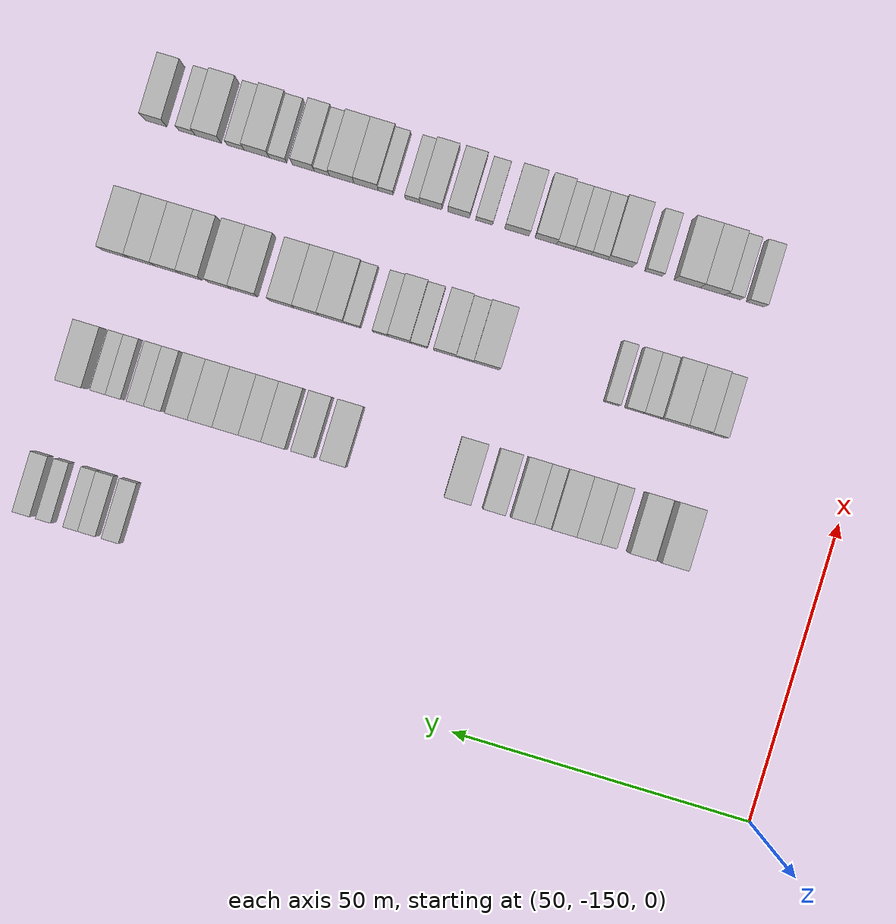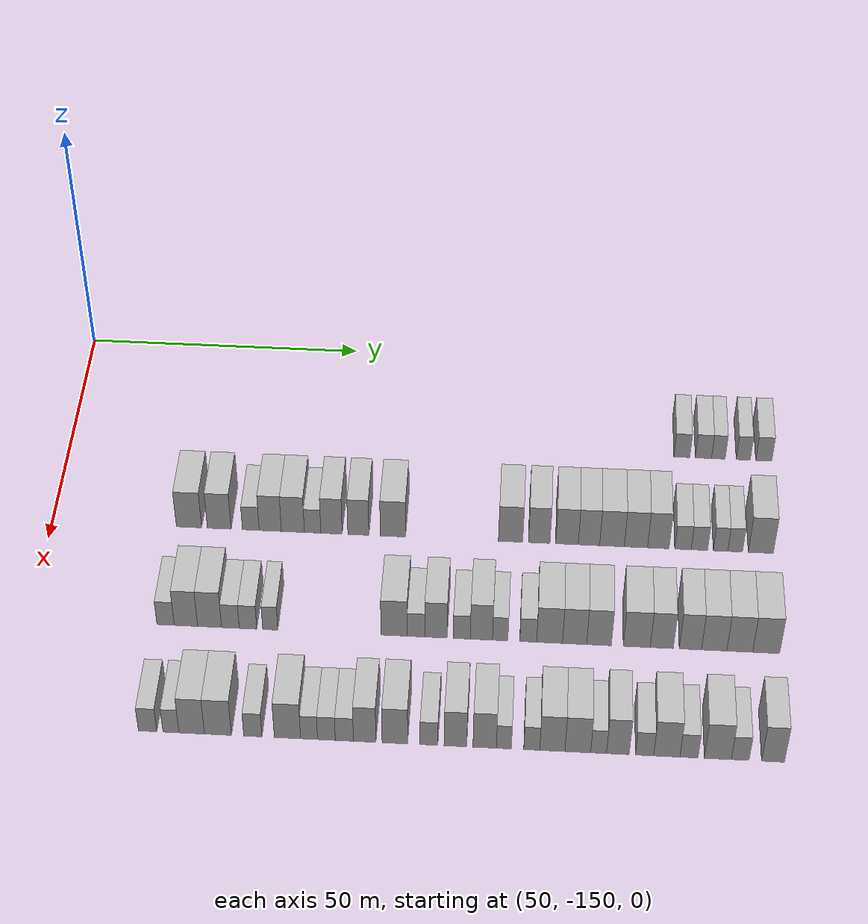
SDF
<sdf version="1.6">
 <world name="default">
  <model name="building_465">
   <static>1</static>
   <pose>69.0000 -39.1263 0 0.000000 0.000000 0.000000</pose>
   <link name="link">
    <pose>0 0 3.00 0 0 0</pose>
    <collision name="collision"><geometry><box><size>10.0000 2.8559 6.0000</size></box></geometry></collision>
    <visual name="visual">
     <cast_shadows>0</cast_shadows>
     <geometry><box><size>10.0000 2.8559 6.0000</size></box></geometry>
     <material>
      <script>
       <uri>model://HANNAS_wall/materials/scripts</uri>
       <uri>model://HANNAS_wall/materials/textures</uri>
       <name>vrc/HANNAS_wall</name>
      </script>
     </material>
    </visual>
   </link>
  </model>
  <model name="building_466">
   <static>1</static>
   <pose>69.0000 -35.2380 0 0.000000 0.000000 0.000000</pose>
   <link name="link">
    <pose>0 0 3.00 0 0 0</pose>
    <collision name="collision"><geometry><box><size>10.0000 2.9206 6.0000</size></box></geometry></collision>
    <visual name="visual">
     <cast_shadows>0</cast_shadows>
     <geometry><box><size>10.0000 2.9206 6.0000</size></box></geometry>
     <material>
      <script>
       <uri>model://HANNAS_wall/materials/scripts</uri>
       <uri>model://HANNAS_wall/materials/textures</uri>
       <name>vrc/HANNAS_wall</name>
      </script>
     </material>
    </visual>
   </link>
  </model>
  <model name="building_467">
   <static>1</static>
   <pose>69.0000 -32.5563 0 0.000000 0.000000 0.000000</pose>
   <link name="link">
    <pose>0 0 3.00 0 0 0</pose>
    <collision name="collision"><geometry><box><size>10.0000 2.4430 6.0000</size></box></geometry></collision>
    <visual name="visual">
     <cast_shadows>0</cast_shadows>
     <geometry><box><size>10.0000 2.4430 6.0000</size></box></geometry>
     <material>
      <script>
       <uri>model://HANNAS_wall/materials/scripts</uri>
       <uri>model://HANNAS_wall/materials/textures</uri>
       <name>vrc/HANNAS_wall</name>
      </script>
     </material>
    </visual>
   </link>
  </model>
  <model name="building_468">
   <static>1</static>
   <pose>69.0000 -28.0826 0 0.000000 0.000000 0.000000</pose>
   <link name="link">
    <pose>0 0 3.00 0 0 0</pose>
    <collision name="collision"><geometry><box><size>10.0000 2.5043 6.0000</size></box></geometry></collision>
    <visual name="visual">
     <cast_shadows>0</cast_shadows>
     <geometry><box><size>10.0000 2.5043 6.0000</size></box></geometry>
     <material>
      <script>
       <uri>model://HANNAS_wall/materials/scripts</uri>
       <uri>model://HANNAS_wall/materials/textures</uri>
       <name>vrc/HANNAS_wall</name>
      </script>
     </material>
    </visual>
   </link>
  </model>
  <model name="building_469">
   <static>1</static>
   <pose>69.0000 -24.3845 0 0.000000 0.000000 0.000000</pose>
   <link name="link">
    <pose>0 0 3.00 0 0 0</pose>
    <collision name="collision"><geometry><box><size>10.0000 2.8919 6.0000</size></box></geometry></collision>
    <visual name="visual">
     <cast_shadows>0</cast_shadows>
     <geometry><box><size>10.0000 2.8919 6.0000</size></box></geometry>
     <material>
      <script>
       <uri>model://HANNAS_wall/materials/scripts</uri>
       <uri>model://HANNAS_wall/materials/textures</uri>
       <name>vrc/HANNAS_wall</name>
      </script>
     </material>
    </visual>
   </link>
  </model>
  <model name="building_635">
   <static>1</static>
   <pose>91.0000 -125.8442 0 0.000000 0.000000 0.000000</pose>
   <link name="link">
    <pose>0 0 4.50 0 0 0</pose>
    <collision name="collision"><geometry><box><size>10.0000 4.4582 9.0000</size></box></geometry></collision>
    <visual name="visual">
     <cast_shadows>0</cast_shadows>
     <geometry><box><size>10.0000 4.4582 9.0000</size></box></geometry>
     <material>
      <script>
       <uri>model://HANNAS_wall/materials/scripts</uri>
       <uri>model://HANNAS_wall/materials/textures</uri>
       <name>vrc/HANNAS_wall</name>
      </script>
     </material>
    </visual>
   </link>
  </model>
  <model name="building_636">
   <static>1</static>
   <pose>91.0000 -120.5212 0 0.000000 0.000000 0.000000</pose>
   <link name="link">
    <pose>0 0 4.50 0 0 0</pose>
    <collision name="collision"><geometry><box><size>10.0000 4.1878 9.0000</size></box></geometry></collision>
    <visual name="visual">
     <cast_shadows>0</cast_shadows>
     <geometry><box><size>10.0000 4.1878 9.0000</size></box></geometry>
     <material>
      <script>
       <uri>model://HANNAS_wall/materials/scripts</uri>
       <uri>model://HANNAS_wall/materials/textures</uri>
       <name>vrc/HANNAS_wall</name>
      </script>
     </material>
    </visual>
   </link>
  </model>
  <model name="building_637">
   <static>1</static>
   <pose>91.0000 -114.9559 0 0.000000 0.000000 0.000000</pose>
   <link name="link">
    <pose>0 0 3.00 0 0 0</pose>
    <collision name="collision"><geometry><box><size>10.0000 2.9429 6.0000</size></box></geometry></collision>
    <visual name="visual">
     <cast_shadows>0</cast_shadows>
     <geometry><box><size>10.0000 2.9429 6.0000</size></box></geometry>
     <material>
      <script>
       <uri>model://HANNAS_wall/materials/scripts</uri>
       <uri>model://HANNAS_wall/materials/textures</uri>
       <name>vrc/HANNAS_wall</name>
      </script>
     </material>
    </visual>
   </link>
  </model>
  <model name="building_638">
   <static>1</static>
   <pose>91.0000 -111.5303 0 0.000000 0.000000 0.000000</pose>
   <link name="link">
    <pose>0 0 4.50 0 0 0</pose>
    <collision name="collision"><geometry><box><size>10.0000 3.9081 9.0000</size></box></geometry></collision>
    <visual name="visual">
     <cast_shadows>0</cast_shadows>
     <geometry><box><size>10.0000 3.9081 9.0000</size></box></geometry>
     <material>
      <script>
       <uri>model://HANNAS_wall/materials/scripts</uri>
       <uri>model://HANNAS_wall/materials/textures</uri>
       <name>vrc/HANNAS_wall</name>
      </script>
     </material>
    </visual>
   </link>
  </model>
  <model name="building_639">
   <static>1</static>
   <pose>91.0000 -107.5520 0 0.000000 0.000000 0.000000</pose>
   <link name="link">
    <pose>0 0 4.50 0 0 0</pose>
    <collision name="collision"><geometry><box><size>10.0000 4.0485 9.0000</size></box></geometry></collision>
    <visual name="visual">
     <cast_shadows>0</cast_shadows>
     <geometry><box><size>10.0000 4.0485 9.0000</size></box></geometry>
     <material>
      <script>
       <uri>model://HANNAS_wall/materials/scripts</uri>
       <uri>model://HANNAS_wall/materials/textures</uri>
       <name>vrc/HANNAS_wall</name>
      </script>
     </material>
    </visual>
   </link>
  </model>
  <model name="building_640">
   <static>1</static>
   <pose>91.0000 -104.0850 0 0.000000 0.000000 0.000000</pose>
   <link name="link">
    <pose>0 0 3.00 0 0 0</pose>
    <collision name="collision"><geometry><box><size>10.0000 2.8856 6.0000</size></box></geometry></collision>
    <visual name="visual">
     <cast_shadows>0</cast_shadows>
     <geometry><box><size>10.0000 2.8856 6.0000</size></box></geometry>
     <material>
      <script>
       <uri>model://HANNAS_wall/materials/scripts</uri>
       <uri>model://HANNAS_wall/materials/textures</uri>
       <name>vrc/HANNAS_wall</name>
      </script>
     </material>
    </visual>
   </link>
  </model>
  <model name="building_641">
   <static>1</static>
   <pose>91.0000 -100.7714 0 0.000000 0.000000 0.000000</pose>
   <link name="link">
    <pose>0 0 4.50 0 0 0</pose>
    <collision name="collision"><geometry><box><size>10.0000 3.7415 9.0000</size></box></geometry></collision>
    <visual name="visual">
     <cast_shadows>0</cast_shadows>
     <geometry><box><size>10.0000 3.7415 9.0000</size></box></geometry>
     <material>
      <script>
       <uri>model://HANNAS_wall/materials/scripts</uri>
       <uri>model://HANNAS_wall/materials/textures</uri>
       <name>vrc/HANNAS_wall</name>
      </script>
     </material>
    </visual>
   </link>
  </model>
  <model name="building_642">
   <static>1</static>
   <pose>91.0000 -96.0615 0 0.000000 0.000000 0.000000</pose>
   <link name="link">
    <pose>0 0 4.50 0 0 0</pose>
    <collision name="collision"><geometry><box><size>10.0000 3.6784 9.0000</size></box></geometry></collision>
    <visual name="visual">
     <cast_shadows>0</cast_shadows>
     <geometry><box><size>10.0000 3.6784 9.0000</size></box></geometry>
     <material>
      <script>
       <uri>model://HANNAS_wall/materials/scripts</uri>
       <uri>model://HANNAS_wall/materials/textures</uri>
       <name>vrc/HANNAS_wall</name>
      </script>
     </material>
    </visual>
   </link>
  </model>
  <model name="building_643">
   <static>1</static>
   <pose>91.0000 -90.0112 0 0.000000 0.000000 0.000000</pose>
   <link name="link">
    <pose>0 0 4.50 0 0 0</pose>
    <collision name="collision"><geometry><box><size>10.0000 4.4222 9.0000</size></box></geometry></collision>
    <visual name="visual">
     <cast_shadows>0</cast_shadows>
     <geometry><box><size>10.0000 4.4222 9.0000</size></box></geometry>
     <material>
      <script>
       <uri>model://HANNAS_wall/materials/scripts</uri>
       <uri>model://HANNAS_wall/materials/textures</uri>
       <name>vrc/HANNAS_wall</name>
      </script>
     </material>
    </visual>
   </link>
  </model>
  <model name="building_644">
   <static>1</static>
   <pose>91.0000 -69.4468 0 0.000000 0.000000 0.000000</pose>
   <link name="link">
    <pose>0 0 4.50 0 0 0</pose>
    <collision name="collision"><geometry><box><size>10.0000 4.2355 9.0000</size></box></geometry></collision>
    <visual name="visual">
     <cast_shadows>0</cast_shadows>
     <geometry><box><size>10.0000 4.2355 9.0000</size></box></geometry>
     <material>
      <script>
       <uri>model://HANNAS_wall/materials/scripts</uri>
       <uri>model://HANNAS_wall/materials/textures</uri>
       <name>vrc/HANNAS_wall</name>
      </script>
     </material>
    </visual>
   </link>
  </model>
  <model name="building_645">
   <static>1</static>
   <pose>91.0000 -64.4554 0 0.000000 0.000000 0.000000</pose>
   <link name="link">
    <pose>0 0 4.50 0 0 0</pose>
    <collision name="collision"><geometry><box><size>10.0000 3.7474 9.0000</size></box></geometry></collision>
    <visual name="visual">
     <cast_shadows>0</cast_shadows>
     <geometry><box><size>10.0000 3.7474 9.0000</size></box></geometry>
     <material>
      <script>
       <uri>model://HANNAS_wall/materials/scripts</uri>
       <uri>model://HANNAS_wall/materials/textures</uri>
       <name>vrc/HANNAS_wall</name>
      </script>
     </material>
    </visual>
   </link>
  </model>
  <model name="building_646">
   <static>1</static>
   <pose>91.0000 -59.6228 0 0.000000 0.000000 0.000000</pose>
   <link name="link">
    <pose>0 0 4.50 0 0 0</pose>
    <collision name="collision"><geometry><box><size>10.0000 3.9178 9.0000</size></box></geometry></collision>
    <visual name="visual">
     <cast_shadows>0</cast_shadows>
     <geometry><box><size>10.0000 3.9178 9.0000</size></box></geometry>
     <material>
      <script>
       <uri>model://HANNAS_wall/materials/scripts</uri>
       <uri>model://HANNAS_wall/materials/textures</uri>
       <name>vrc/HANNAS_wall</name>
      </script>
     </material>
    </visual>
   </link>
  </model>
  <model name="building_647">
   <static>1</static>
   <pose>91.0000 -55.8028 0 0.000000 0.000000 0.000000</pose>
   <link name="link">
    <pose>0 0 4.50 0 0 0</pose>
    <collision name="collision"><geometry><box><size>10.0000 3.7223 9.0000</size></box></geometry></collision>
    <visual name="visual">
     <cast_shadows>0</cast_shadows>
     <geometry><box><size>10.0000 3.7223 9.0000</size></box></geometry>
     <material>
      <script>
       <uri>model://HANNAS_wall/materials/scripts</uri>
       <uri>model://HANNAS_wall/materials/textures</uri>
       <name>vrc/HANNAS_wall</name>
      </script>
     </material>
    </visual>
   </link>
  </model>
  <model name="building_648">
   <static>1</static>
   <pose>91.0000 -51.7996 0 0.000000 0.000000 0.000000</pose>
   <link name="link">
    <pose>0 0 4.50 0 0 0</pose>
    <collision name="collision"><geometry><box><size>10.0000 4.2842 9.0000</size></box></geometry></collision>
    <visual name="visual">
     <cast_shadows>0</cast_shadows>
     <geometry><box><size>10.0000 4.2842 9.0000</size></box></geometry>
     <material>
      <script>
       <uri>model://HANNAS_wall/materials/scripts</uri>
       <uri>model://HANNAS_wall/materials/textures</uri>
       <name>vrc/HANNAS_wall</name>
      </script>
     </material>
    </visual>
   </link>
  </model>
  <model name="building_649">
   <static>1</static>
   <pose>91.0000 -47.6365 0 0.000000 0.000000 0.000000</pose>
   <link name="link">
    <pose>0 0 4.50 0 0 0</pose>
    <collision name="collision"><geometry><box><size>10.0000 4.0420 9.0000</size></box></geometry></collision>
    <visual name="visual">
     <cast_shadows>0</cast_shadows>
     <geometry><box><size>10.0000 4.0420 9.0000</size></box></geometry>
     <material>
      <script>
       <uri>model://HANNAS_wall/materials/scripts</uri>
       <uri>model://HANNAS_wall/materials/textures</uri>
       <name>vrc/HANNAS_wall</name>
      </script>
     </material>
    </visual>
   </link>
  </model>
  <model name="building_650">
   <static>1</static>
   <pose>91.0000 -43.7532 0 0.000000 0.000000 0.000000</pose>
   <link name="link">
    <pose>0 0 4.50 0 0 0</pose>
    <collision name="collision"><geometry><box><size>10.0000 3.7246 9.0000</size></box></geometry></collision>
    <visual name="visual">
     <cast_shadows>0</cast_shadows>
     <geometry><box><size>10.0000 3.7246 9.0000</size></box></geometry>
     <material>
      <script>
       <uri>model://HANNAS_wall/materials/scripts</uri>
       <uri>model://HANNAS_wall/materials/textures</uri>
       <name>vrc/HANNAS_wall</name>
      </script>
     </material>
    </visual>
   </link>
  </model>
  <model name="building_651">
   <static>1</static>
   <pose>91.0000 -39.4690 0 0.000000 0.000000 0.000000</pose>
   <link name="link">
    <pose>0 0 3.00 0 0 0</pose>
    <collision name="collision"><geometry><box><size>10.0000 2.8437 6.0000</size></box></geometry></collision>
    <visual name="visual">
     <cast_shadows>0</cast_shadows>
     <geometry><box><size>10.0000 2.8437 6.0000</size></box></geometry>
     <material>
      <script>
       <uri>model://HANNAS_wall/materials/scripts</uri>
       <uri>model://HANNAS_wall/materials/textures</uri>
       <name>vrc/HANNAS_wall</name>
      </script>
     </material>
    </visual>
   </link>
  </model>
  <model name="building_652">
   <static>1</static>
   <pose>91.0000 -36.6310 0 0.000000 0.000000 0.000000</pose>
   <link name="link">
    <pose>0 0 3.00 0 0 0</pose>
    <collision name="collision"><geometry><box><size>10.0000 2.8324 6.0000</size></box></geometry></collision>
    <visual name="visual">
     <cast_shadows>0</cast_shadows>
     <geometry><box><size>10.0000 2.8324 6.0000</size></box></geometry>
     <material>
      <script>
       <uri>model://HANNAS_wall/materials/scripts</uri>
       <uri>model://HANNAS_wall/materials/textures</uri>
       <name>vrc/HANNAS_wall</name>
      </script>
     </material>
    </visual>
   </link>
  </model>
  <model name="building_653">
   <static>1</static>
   <pose>91.0000 -32.9608 0 0.000000 0.000000 0.000000</pose>
   <link name="link">
    <pose>0 0 3.00 0 0 0</pose>
    <collision name="collision"><geometry><box><size>10.0000 2.5081 6.0000</size></box></geometry></collision>
    <visual name="visual">
     <cast_shadows>0</cast_shadows>
     <geometry><box><size>10.0000 2.5081 6.0000</size></box></geometry>
     <material>
      <script>
       <uri>model://HANNAS_wall/materials/scripts</uri>
       <uri>model://HANNAS_wall/materials/textures</uri>
       <name>vrc/HANNAS_wall</name>
      </script>
     </material>
    </visual>
   </link>
  </model>
  <model name="building_654">
   <static>1</static>
   <pose>91.0000 -30.4372 0 0.000000 0.000000 0.000000</pose>
   <link name="link">
    <pose>0 0 3.00 0 0 0</pose>
    <collision name="collision"><geometry><box><size>10.0000 2.5390 6.0000</size></box></geometry></collision>
    <visual name="visual">
     <cast_shadows>0</cast_shadows>
     <geometry><box><size>10.0000 2.5390 6.0000</size></box></geometry>
     <material>
      <script>
       <uri>model://HANNAS_wall/materials/scripts</uri>
       <uri>model://HANNAS_wall/materials/textures</uri>
       <name>vrc/HANNAS_wall</name>
      </script>
     </material>
    </visual>
   </link>
  </model>
  <model name="building_655">
   <static>1</static>
   <pose>91.0000 -26.0047 0 0.000000 0.000000 0.000000</pose>
   <link name="link">
    <pose>0 0 4.50 0 0 0</pose>
    <collision name="collision"><geometry><box><size>10.0000 4.3259 9.0000</size></box></geometry></collision>
    <visual name="visual">
     <cast_shadows>0</cast_shadows>
     <geometry><box><size>10.0000 4.3259 9.0000</size></box></geometry>
     <material>
      <script>
       <uri>model://HANNAS_wall/materials/scripts</uri>
       <uri>model://HANNAS_wall/materials/textures</uri>
       <name>vrc/HANNAS_wall</name>
      </script>
     </material>
    </visual>
   </link>
  </model>
  <model name="building_814">
   <static>1</static>
   <pose>113.0000 -126.9393 0 0.000000 0.000000 0.000000</pose>
   <link name="link">
    <pose>0 0 3.00 0 0 0</pose>
    <collision name="collision"><geometry><box><size>10.0000 2.9278 6.0000</size></box></geometry></collision>
    <visual name="visual">
     <cast_shadows>0</cast_shadows>
     <geometry><box><size>10.0000 2.9278 6.0000</size></box></geometry>
     <material>
      <script>
       <uri>model://HANNAS_wall/materials/scripts</uri>
       <uri>model://HANNAS_wall/materials/textures</uri>
       <name>vrc/HANNAS_wall</name>
      </script>
     </material>
    </visual>
   </link>
  </model>
  <model name="building_815">
   <static>1</static>
   <pose>113.0000 -123.4865 0 0.000000 0.000000 0.000000</pose>
   <link name="link">
    <pose>0 0 4.50 0 0 0</pose>
    <collision name="collision"><geometry><box><size>10.0000 3.9778 9.0000</size></box></geometry></collision>
    <visual name="visual">
     <cast_shadows>0</cast_shadows>
     <geometry><box><size>10.0000 3.9778 9.0000</size></box></geometry>
     <material>
      <script>
       <uri>model://HANNAS_wall/materials/scripts</uri>
       <uri>model://HANNAS_wall/materials/textures</uri>
       <name>vrc/HANNAS_wall</name>
      </script>
     </material>
    </visual>
   </link>
  </model>
  <model name="building_816">
   <static>1</static>
   <pose>113.0000 -119.4678 0 0.000000 0.000000 0.000000</pose>
   <link name="link">
    <pose>0 0 4.50 0 0 0</pose>
    <collision name="collision"><geometry><box><size>10.0000 4.0595 9.0000</size></box></geometry></collision>
    <visual name="visual">
     <cast_shadows>0</cast_shadows>
     <geometry><box><size>10.0000 4.0595 9.0000</size></box></geometry>
     <material>
      <script>
       <uri>model://HANNAS_wall/materials/scripts</uri>
       <uri>model://HANNAS_wall/materials/textures</uri>
       <name>vrc/HANNAS_wall</name>
      </script>
     </material>
    </visual>
   </link>
  </model>
  <model name="building_817">
   <static>1</static>
   <pose>113.0000 -115.9519 0 0.000000 0.000000 0.000000</pose>
   <link name="link">
    <pose>0 0 3.00 0 0 0</pose>
    <collision name="collision"><geometry><box><size>10.0000 2.9723 6.0000</size></box></geometry></collision>
    <visual name="visual">
     <cast_shadows>0</cast_shadows>
     <geometry><box><size>10.0000 2.9723 6.0000</size></box></geometry>
     <material>
      <script>
       <uri>model://HANNAS_wall/materials/scripts</uri>
       <uri>model://HANNAS_wall/materials/textures</uri>
       <name>vrc/HANNAS_wall</name>
      </script>
     </material>
    </visual>
   </link>
  </model>
  <model name="building_818">
   <static>1</static>
   <pose>113.0000 -112.9788 0 0.000000 0.000000 0.000000</pose>
   <link name="link">
    <pose>0 0 3.00 0 0 0</pose>
    <collision name="collision"><geometry><box><size>10.0000 2.9739 6.0000</size></box></geometry></collision>
    <visual name="visual">
     <cast_shadows>0</cast_shadows>
     <geometry><box><size>10.0000 2.9739 6.0000</size></box></geometry>
     <material>
      <script>
       <uri>model://HANNAS_wall/materials/scripts</uri>
       <uri>model://HANNAS_wall/materials/textures</uri>
       <name>vrc/HANNAS_wall</name>
      </script>
     </material>
    </visual>
   </link>
  </model>
  <model name="building_819">
   <static>1</static>
   <pose>113.0000 -109.2172 0 0.000000 0.000000 0.000000</pose>
   <link name="link">
    <pose>0 0 3.00 0 0 0</pose>
    <collision name="collision"><geometry><box><size>10.0000 2.5494 6.0000</size></box></geometry></collision>
    <visual name="visual">
     <cast_shadows>0</cast_shadows>
     <geometry><box><size>10.0000 2.5494 6.0000</size></box></geometry>
     <material>
      <script>
       <uri>model://HANNAS_wall/materials/scripts</uri>
       <uri>model://HANNAS_wall/materials/textures</uri>
       <name>vrc/HANNAS_wall</name>
      </script>
     </material>
    </visual>
   </link>
  </model>
  <model name="building_820">
   <static>1</static>
   <pose>113.0000 -88.3402 0 0.000000 0.000000 0.000000</pose>
   <link name="link">
    <pose>0 0 4.50 0 0 0</pose>
    <collision name="collision"><geometry><box><size>10.0000 4.4015 9.0000</size></box></geometry></collision>
    <visual name="visual">
     <cast_shadows>0</cast_shadows>
     <geometry><box><size>10.0000 4.4015 9.0000</size></box></geometry>
     <material>
      <script>
       <uri>model://HANNAS_wall/materials/scripts</uri>
       <uri>model://HANNAS_wall/materials/textures</uri>
       <name>vrc/HANNAS_wall</name>
      </script>
     </material>
    </visual>
   </link>
  </model>
  <model name="building_821">
   <static>1</static>
   <pose>113.0000 -84.6715 0 0.000000 0.000000 0.000000</pose>
   <link name="link">
    <pose>0 0 3.00 0 0 0</pose>
    <collision name="collision"><geometry><box><size>10.0000 2.9358 6.0000</size></box></geometry></collision>
    <visual name="visual">
     <cast_shadows>0</cast_shadows>
     <geometry><box><size>10.0000 2.9358 6.0000</size></box></geometry>
     <material>
      <script>
       <uri>model://HANNAS_wall/materials/scripts</uri>
       <uri>model://HANNAS_wall/materials/textures</uri>
       <name>vrc/HANNAS_wall</name>
      </script>
     </material>
    </visual>
   </link>
  </model>
  <model name="building_822">
   <static>1</static>
   <pose>113.0000 -81.3223 0 0.000000 0.000000 0.000000</pose>
   <link name="link">
    <pose>0 0 4.50 0 0 0</pose>
    <collision name="collision"><geometry><box><size>10.0000 3.7626 9.0000</size></box></geometry></collision>
    <visual name="visual">
     <cast_shadows>0</cast_shadows>
     <geometry><box><size>10.0000 3.7626 9.0000</size></box></geometry>
     <material>
      <script>
       <uri>model://HANNAS_wall/materials/scripts</uri>
       <uri>model://HANNAS_wall/materials/textures</uri>
       <name>vrc/HANNAS_wall</name>
      </script>
     </material>
    </visual>
   </link>
  </model>
  <model name="building_823">
   <static>1</static>
   <pose>113.0000 -77.0036 0 0.000000 0.000000 0.000000</pose>
   <link name="link">
    <pose>0 0 3.00 0 0 0</pose>
    <collision name="collision"><geometry><box><size>10.0000 2.8748 6.0000</size></box></geometry></collision>
    <visual name="visual">
     <cast_shadows>0</cast_shadows>
     <geometry><box><size>10.0000 2.8748 6.0000</size></box></geometry>
     <material>
      <script>
       <uri>model://HANNAS_wall/materials/scripts</uri>
       <uri>model://HANNAS_wall/materials/textures</uri>
       <name>vrc/HANNAS_wall</name>
      </script>
     </material>
    </visual>
   </link>
  </model>
  <model name="building_824">
   <static>1</static>
   <pose>113.0000 -73.6991 0 0.000000 0.000000 0.000000</pose>
   <link name="link">
    <pose>0 0 4.50 0 0 0</pose>
    <collision name="collision"><geometry><box><size>10.0000 3.7341 9.0000</size></box></geometry></collision>
    <visual name="visual">
     <cast_shadows>0</cast_shadows>
     <geometry><box><size>10.0000 3.7341 9.0000</size></box></geometry>
     <material>
      <script>
       <uri>model://HANNAS_wall/materials/scripts</uri>
       <uri>model://HANNAS_wall/materials/textures</uri>
       <name>vrc/HANNAS_wall</name>
      </script>
     </material>
    </visual>
   </link>
  </model>
  <model name="building_825">
   <static>1</static>
   <pose>113.0000 -70.5424 0 0.000000 0.000000 0.000000</pose>
   <link name="link">
    <pose>0 0 3.00 0 0 0</pose>
    <collision name="collision"><geometry><box><size>10.0000 2.5794 6.0000</size></box></geometry></collision>
    <visual name="visual">
     <cast_shadows>0</cast_shadows>
     <geometry><box><size>10.0000 2.5794 6.0000</size></box></geometry>
     <material>
      <script>
       <uri>model://HANNAS_wall/materials/scripts</uri>
       <uri>model://HANNAS_wall/materials/textures</uri>
       <name>vrc/HANNAS_wall</name>
      </script>
     </material>
    </visual>
   </link>
  </model>
  <model name="building_826">
   <static>1</static>
   <pose>113.0000 -65.8496 0 0.000000 0.000000 0.000000</pose>
   <link name="link">
    <pose>0 0 3.00 0 0 0</pose>
    <collision name="collision"><geometry><box><size>10.0000 2.8063 6.0000</size></box></geometry></collision>
    <visual name="visual">
     <cast_shadows>0</cast_shadows>
     <geometry><box><size>10.0000 2.8063 6.0000</size></box></geometry>
     <material>
      <script>
       <uri>model://HANNAS_wall/materials/scripts</uri>
       <uri>model://HANNAS_wall/materials/textures</uri>
       <name>vrc/HANNAS_wall</name>
      </script>
     </material>
    </visual>
   </link>
  </model>
  <model name="building_827">
   <static>1</static>
   <pose>113.0000 -62.2812 0 0.000000 0.000000 0.000000</pose>
   <link name="link">
    <pose>0 0 4.50 0 0 0</pose>
    <collision name="collision"><geometry><box><size>10.0000 4.3305 9.0000</size></box></geometry></collision>
    <visual name="visual">
     <cast_shadows>0</cast_shadows>
     <geometry><box><size>10.0000 4.3305 9.0000</size></box></geometry>
     <material>
      <script>
       <uri>model://HANNAS_wall/materials/scripts</uri>
       <uri>model://HANNAS_wall/materials/textures</uri>
       <name>vrc/HANNAS_wall</name>
      </script>
     </material>
    </visual>
   </link>
  </model>
  <model name="building_828">
   <static>1</static>
   <pose>113.0000 -58.1010 0 0.000000 0.000000 0.000000</pose>
   <link name="link">
    <pose>0 0 4.50 0 0 0</pose>
    <collision name="collision"><geometry><box><size>10.0000 4.0298 9.0000</size></box></geometry></collision>
    <visual name="visual">
     <cast_shadows>0</cast_shadows>
     <geometry><box><size>10.0000 4.0298 9.0000</size></box></geometry>
     <material>
      <script>
       <uri>model://HANNAS_wall/materials/scripts</uri>
       <uri>model://HANNAS_wall/materials/textures</uri>
       <name>vrc/HANNAS_wall</name>
      </script>
     </material>
    </visual>
   </link>
  </model>
  <model name="building_829">
   <static>1</static>
   <pose>113.0000 -54.0258 0 0.000000 0.000000 0.000000</pose>
   <link name="link">
    <pose>0 0 4.50 0 0 0</pose>
    <collision name="collision"><geometry><box><size>10.0000 4.1207 9.0000</size></box></geometry></collision>
    <visual name="visual">
     <cast_shadows>0</cast_shadows>
     <geometry><box><size>10.0000 4.1207 9.0000</size></box></geometry>
     <material>
      <script>
       <uri>model://HANNAS_wall/materials/scripts</uri>
       <uri>model://HANNAS_wall/materials/textures</uri>
       <name>vrc/HANNAS_wall</name>
      </script>
     </material>
    </visual>
   </link>
  </model>
  <model name="building_830">
   <static>1</static>
   <pose>113.0000 -47.7162 0 0.000000 0.000000 0.000000</pose>
   <link name="link">
    <pose>0 0 4.50 0 0 0</pose>
    <collision name="collision"><geometry><box><size>10.0000 4.4986 9.0000</size></box></geometry></collision>
    <visual name="visual">
     <cast_shadows>0</cast_shadows>
     <geometry><box><size>10.0000 4.4986 9.0000</size></box></geometry>
     <material>
      <script>
       <uri>model://HANNAS_wall/materials/scripts</uri>
       <uri>model://HANNAS_wall/materials/textures</uri>
       <name>vrc/HANNAS_wall</name>
      </script>
     </material>
    </visual>
   </link>
  </model>
  <model name="building_831">
   <static>1</static>
   <pose>113.0000 -43.5484 0 0.000000 0.000000 0.000000</pose>
   <link name="link">
    <pose>0 0 4.50 0 0 0</pose>
    <collision name="collision"><geometry><box><size>10.0000 3.8370 9.0000</size></box></geometry></collision>
    <visual name="visual">
     <cast_shadows>0</cast_shadows>
     <geometry><box><size>10.0000 3.8370 9.0000</size></box></geometry>
     <material>
      <script>
       <uri>model://HANNAS_wall/materials/scripts</uri>
       <uri>model://HANNAS_wall/materials/textures</uri>
       <name>vrc/HANNAS_wall</name>
      </script>
     </material>
    </visual>
   </link>
  </model>
  <model name="building_832">
   <static>1</static>
   <pose>113.0000 -38.7880 0 0.000000 0.000000 0.000000</pose>
   <link name="link">
    <pose>0 0 4.50 0 0 0</pose>
    <collision name="collision"><geometry><box><size>10.0000 3.6838 9.0000</size></box></geometry></collision>
    <visual name="visual">
     <cast_shadows>0</cast_shadows>
     <geometry><box><size>10.0000 3.6838 9.0000</size></box></geometry>
     <material>
      <script>
       <uri>model://HANNAS_wall/materials/scripts</uri>
       <uri>model://HANNAS_wall/materials/textures</uri>
       <name>vrc/HANNAS_wall</name>
      </script>
     </material>
    </visual>
   </link>
  </model>
  <model name="building_833">
   <static>1</static>
   <pose>113.0000 -34.8377 0 0.000000 0.000000 0.000000</pose>
   <link name="link">
    <pose>0 0 4.50 0 0 0</pose>
    <collision name="collision"><geometry><box><size>10.0000 4.2168 9.0000</size></box></geometry></collision>
    <visual name="visual">
     <cast_shadows>0</cast_shadows>
     <geometry><box><size>10.0000 4.2168 9.0000</size></box></geometry>
     <material>
      <script>
       <uri>model://HANNAS_wall/materials/scripts</uri>
       <uri>model://HANNAS_wall/materials/textures</uri>
       <name>vrc/HANNAS_wall</name>
      </script>
     </material>
    </visual>
   </link>
  </model>
  <model name="building_834">
   <static>1</static>
   <pose>113.0000 -30.5746 0 0.000000 0.000000 0.000000</pose>
   <link name="link">
    <pose>0 0 4.50 0 0 0</pose>
    <collision name="collision"><geometry><box><size>10.0000 4.3094 9.0000</size></box></geometry></collision>
    <visual name="visual">
     <cast_shadows>0</cast_shadows>
     <geometry><box><size>10.0000 4.3094 9.0000</size></box></geometry>
     <material>
      <script>
       <uri>model://HANNAS_wall/materials/scripts</uri>
       <uri>model://HANNAS_wall/materials/textures</uri>
       <name>vrc/HANNAS_wall</name>
      </script>
     </material>
    </visual>
   </link>
  </model>
  <model name="building_835">
   <static>1</static>
   <pose>113.0000 -26.1833 0 0.000000 0.000000 0.000000</pose>
   <link name="link">
    <pose>0 0 4.50 0 0 0</pose>
    <collision name="collision"><geometry><box><size>10.0000 4.4732 9.0000</size></box></geometry></collision>
    <visual name="visual">
     <cast_shadows>0</cast_shadows>
     <geometry><box><size>10.0000 4.4732 9.0000</size></box></geometry>
     <material>
      <script>
       <uri>model://HANNAS_wall/materials/scripts</uri>
       <uri>model://HANNAS_wall/materials/textures</uri>
       <name>vrc/HANNAS_wall</name>
      </script>
     </material>
    </visual>
   </link>
  </model>
  <model name="building_992">
   <static>1</static>
   <pose>135.0000 -126.8080 0 0.000000 0.000000 0.000000</pose>
   <link name="link">
    <pose>0 0 3.00 0 0 0</pose>
    <collision name="collision"><geometry><box><size>10.0000 2.9838 6.0000</size></box></geometry></collision>
    <visual name="visual">
     <cast_shadows>0</cast_shadows>
     <geometry><box><size>10.0000 2.9838 6.0000</size></box></geometry>
     <material>
      <script>
       <uri>model://HANNAS_wall/materials/scripts</uri>
       <uri>model://HANNAS_wall/materials/textures</uri>
       <name>vrc/HANNAS_wall</name>
      </script>
     </material>
    </visual>
   </link>
  </model>
  <model name="building_993">
   <static>1</static>
   <pose>135.0000 -123.0120 0 0.000000 0.000000 0.000000</pose>
   <link name="link">
    <pose>0 0 3.00 0 0 0</pose>
    <collision name="collision"><geometry><box><size>10.0000 2.6084 6.0000</size></box></geometry></collision>
    <visual name="visual">
     <cast_shadows>0</cast_shadows>
     <geometry><box><size>10.0000 2.6084 6.0000</size></box></geometry>
     <material>
      <script>
       <uri>model://HANNAS_wall/materials/scripts</uri>
       <uri>model://HANNAS_wall/materials/textures</uri>
       <name>vrc/HANNAS_wall</name>
      </script>
     </material>
    </visual>
   </link>
  </model>
  <model name="building_994">
   <static>1</static>
   <pose>135.0000 -119.6341 0 0.000000 0.000000 0.000000</pose>
   <link name="link">
    <pose>0 0 4.50 0 0 0</pose>
    <collision name="collision"><geometry><box><size>10.0000 4.1473 9.0000</size></box></geometry></collision>
    <visual name="visual">
     <cast_shadows>0</cast_shadows>
     <geometry><box><size>10.0000 4.1473 9.0000</size></box></geometry>
     <material>
      <script>
       <uri>model://HANNAS_wall/materials/scripts</uri>
       <uri>model://HANNAS_wall/materials/textures</uri>
       <name>vrc/HANNAS_wall</name>
      </script>
     </material>
    </visual>
   </link>
  </model>
  <model name="building_995">
   <static>1</static>
   <pose>135.0000 -115.3748 0 0.000000 0.000000 0.000000</pose>
   <link name="link">
    <pose>0 0 4.50 0 0 0</pose>
    <collision name="collision"><geometry><box><size>10.0000 4.3715 9.0000</size></box></geometry></collision>
    <visual name="visual">
     <cast_shadows>0</cast_shadows>
     <geometry><box><size>10.0000 4.3715 9.0000</size></box></geometry>
     <material>
      <script>
       <uri>model://HANNAS_wall/materials/scripts</uri>
       <uri>model://HANNAS_wall/materials/textures</uri>
       <name>vrc/HANNAS_wall</name>
      </script>
     </material>
    </visual>
   </link>
  </model>
  <model name="building_996">
   <static>1</static>
   <pose>135.0000 -109.7154 0 0.000000 0.000000 0.000000</pose>
   <link name="link">
    <pose>0 0 3.00 0 0 0</pose>
    <collision name="collision"><geometry><box><size>10.0000 2.9473 6.0000</size></box></geometry></collision>
    <visual name="visual">
     <cast_shadows>0</cast_shadows>
     <geometry><box><size>10.0000 2.9473 6.0000</size></box></geometry>
     <material>
      <script>
       <uri>model://HANNAS_wall/materials/scripts</uri>
       <uri>model://HANNAS_wall/materials/textures</uri>
       <name>vrc/HANNAS_wall</name>
      </script>
     </material>
    </visual>
   </link>
  </model>
  <model name="building_997">
   <static>1</static>
   <pose>135.0000 -104.1189 0 0.000000 0.000000 0.000000</pose>
   <link name="link">
    <pose>0 0 4.50 0 0 0</pose>
    <collision name="collision"><geometry><box><size>10.0000 4.2458 9.0000</size></box></geometry></collision>
    <visual name="visual">
     <cast_shadows>0</cast_shadows>
     <geometry><box><size>10.0000 4.2458 9.0000</size></box></geometry>
     <material>
      <script>
       <uri>model://HANNAS_wall/materials/scripts</uri>
       <uri>model://HANNAS_wall/materials/textures</uri>
       <name>vrc/HANNAS_wall</name>
      </script>
     </material>
    </visual>
   </link>
  </model>
  <model name="building_998">
   <static>1</static>
   <pose>135.0000 -100.6201 0 0.000000 0.000000 0.000000</pose>
   <link name="link">
    <pose>0 0 3.00 0 0 0</pose>
    <collision name="collision"><geometry><box><size>10.0000 2.7517 6.0000</size></box></geometry></collision>
    <visual name="visual">
     <cast_shadows>0</cast_shadows>
     <geometry><box><size>10.0000 2.7517 6.0000</size></box></geometry>
     <material>
      <script>
       <uri>model://HANNAS_wall/materials/scripts</uri>
       <uri>model://HANNAS_wall/materials/textures</uri>
       <name>vrc/HANNAS_wall</name>
      </script>
     </material>
    </visual>
   </link>
  </model>
  <model name="building_999">
   <static>1</static>
   <pose>135.0000 -97.8147 0 0.000000 0.000000 0.000000</pose>
   <link name="link">
    <pose>0 0 3.00 0 0 0</pose>
    <collision name="collision"><geometry><box><size>10.0000 2.8590 6.0000</size></box></geometry></collision>
    <visual name="visual">
     <cast_shadows>0</cast_shadows>
     <geometry><box><size>10.0000 2.8590 6.0000</size></box></geometry>
     <material>
      <script>
       <uri>model://HANNAS_wall/materials/scripts</uri>
       <uri>model://HANNAS_wall/materials/textures</uri>
       <name>vrc/HANNAS_wall</name>
      </script>
     </material>
    </visual>
   </link>
  </model>
  <model name="building_1000">
   <static>1</static>
   <pose>135.0000 -94.9145 0 0.000000 0.000000 0.000000</pose>
   <link name="link">
    <pose>0 0 3.00 0 0 0</pose>
    <collision name="collision"><geometry><box><size>10.0000 2.9414 6.0000</size></box></geometry></collision>
    <visual name="visual">
     <cast_shadows>0</cast_shadows>
     <geometry><box><size>10.0000 2.9414 6.0000</size></box></geometry>
     <material>
      <script>
       <uri>model://HANNAS_wall/materials/scripts</uri>
       <uri>model://HANNAS_wall/materials/textures</uri>
       <name>vrc/HANNAS_wall</name>
      </script>
     </material>
    </visual>
   </link>
  </model>
  <model name="building_1001">
   <static>1</static>
   <pose>135.0000 -91.6335 0 0.000000 0.000000 0.000000</pose>
   <link name="link">
    <pose>0 0 4.50 0 0 0</pose>
    <collision name="collision"><geometry><box><size>10.0000 3.6206 9.0000</size></box></geometry></collision>
    <visual name="visual">
     <cast_shadows>0</cast_shadows>
     <geometry><box><size>10.0000 3.6206 9.0000</size></box></geometry>
     <material>
      <script>
       <uri>model://HANNAS_wall/materials/scripts</uri>
       <uri>model://HANNAS_wall/materials/textures</uri>
       <name>vrc/HANNAS_wall</name>
      </script>
     </material>
    </visual>
   </link>
  </model>
  <model name="building_1002">
   <static>1</static>
   <pose>135.0000 -86.7714 0 0.000000 0.000000 0.000000</pose>
   <link name="link">
    <pose>0 0 4.50 0 0 0</pose>
    <collision name="collision"><geometry><box><size>10.0000 4.1035 9.0000</size></box></geometry></collision>
    <visual name="visual">
     <cast_shadows>0</cast_shadows>
     <geometry><box><size>10.0000 4.1035 9.0000</size></box></geometry>
     <material>
      <script>
       <uri>model://HANNAS_wall/materials/scripts</uri>
       <uri>model://HANNAS_wall/materials/textures</uri>
       <name>vrc/HANNAS_wall</name>
      </script>
     </material>
    </visual>
   </link>
  </model>
  <model name="building_1003">
   <static>1</static>
   <pose>135.0000 -81.2837 0 0.000000 0.000000 0.000000</pose>
   <link name="link">
    <pose>0 0 3.00 0 0 0</pose>
    <collision name="collision"><geometry><box><size>10.0000 2.8720 6.0000</size></box></geometry></collision>
    <visual name="visual">
     <cast_shadows>0</cast_shadows>
     <geometry><box><size>10.0000 2.8720 6.0000</size></box></geometry>
     <material>
      <script>
       <uri>model://HANNAS_wall/materials/scripts</uri>
       <uri>model://HANNAS_wall/materials/textures</uri>
       <name>vrc/HANNAS_wall</name>
      </script>
     </material>
    </visual>
   </link>
  </model>
  <model name="building_1004">
   <static>1</static>
   <pose>135.0000 -77.0257 0 0.000000 0.000000 0.000000</pose>
   <link name="link">
    <pose>0 0 4.50 0 0 0</pose>
    <collision name="collision"><geometry><box><size>10.0000 3.6438 9.0000</size></box></geometry></collision>
    <visual name="visual">
     <cast_shadows>0</cast_shadows>
     <geometry><box><size>10.0000 3.6438 9.0000</size></box></geometry>
     <material>
      <script>
       <uri>model://HANNAS_wall/materials/scripts</uri>
       <uri>model://HANNAS_wall/materials/textures</uri>
       <name>vrc/HANNAS_wall</name>
      </script>
     </material>
    </visual>
   </link>
  </model>
  <model name="building_1005">
   <static>1</static>
   <pose>135.0000 -72.3252 0 0.000000 0.000000 0.000000</pose>
   <link name="link">
    <pose>0 0 4.50 0 0 0</pose>
    <collision name="collision"><geometry><box><size>10.0000 3.7572 9.0000</size></box></geometry></collision>
    <visual name="visual">
     <cast_shadows>0</cast_shadows>
     <geometry><box><size>10.0000 3.7572 9.0000</size></box></geometry>
     <material>
      <script>
       <uri>model://HANNAS_wall/materials/scripts</uri>
       <uri>model://HANNAS_wall/materials/textures</uri>
       <name>vrc/HANNAS_wall</name>
      </script>
     </material>
    </visual>
   </link>
  </model>
  <model name="building_1006">
   <static>1</static>
   <pose>135.0000 -69.2392 0 0.000000 0.000000 0.000000</pose>
   <link name="link">
    <pose>0 0 3.00 0 0 0</pose>
    <collision name="collision"><geometry><box><size>10.0000 2.4148 6.0000</size></box></geometry></collision>
    <visual name="visual">
     <cast_shadows>0</cast_shadows>
     <geometry><box><size>10.0000 2.4148 6.0000</size></box></geometry>
     <material>
      <script>
       <uri>model://HANNAS_wall/materials/scripts</uri>
       <uri>model://HANNAS_wall/materials/textures</uri>
       <name>vrc/HANNAS_wall</name>
      </script>
     </material>
    </visual>
   </link>
  </model>
  <model name="building_1007">
   <static>1</static>
   <pose>135.0000 -64.7613 0 0.000000 0.000000 0.000000</pose>
   <link name="link">
    <pose>0 0 3.00 0 0 0</pose>
    <collision name="collision"><geometry><box><size>10.0000 2.5410 6.0000</size></box></geometry></collision>
    <visual name="visual">
     <cast_shadows>0</cast_shadows>
     <geometry><box><size>10.0000 2.5410 6.0000</size></box></geometry>
     <material>
      <script>
       <uri>model://HANNAS_wall/materials/scripts</uri>
       <uri>model://HANNAS_wall/materials/textures</uri>
       <name>vrc/HANNAS_wall</name>
      </script>
     </material>
    </visual>
   </link>
  </model>
  <model name="building_1008">
   <static>1</static>
   <pose>135.0000 -61.4673 0 0.000000 0.000000 0.000000</pose>
   <link name="link">
    <pose>0 0 4.50 0 0 0</pose>
    <collision name="collision"><geometry><box><size>10.0000 4.0469 9.0000</size></box></geometry></collision>
    <visual name="visual">
     <cast_shadows>0</cast_shadows>
     <geometry><box><size>10.0000 4.0469 9.0000</size></box></geometry>
     <material>
      <script>
       <uri>model://HANNAS_wall/materials/scripts</uri>
       <uri>model://HANNAS_wall/materials/textures</uri>
       <name>vrc/HANNAS_wall</name>
      </script>
     </material>
    </visual>
   </link>
  </model>
  <model name="building_1009">
   <static>1</static>
   <pose>135.0000 -57.3825 0 0.000000 0.000000 0.000000</pose>
   <link name="link">
    <pose>0 0 4.50 0 0 0</pose>
    <collision name="collision"><geometry><box><size>10.0000 4.1227 9.0000</size></box></geometry></collision>
    <visual name="visual">
     <cast_shadows>0</cast_shadows>
     <geometry><box><size>10.0000 4.1227 9.0000</size></box></geometry>
     <material>
      <script>
       <uri>model://HANNAS_wall/materials/scripts</uri>
       <uri>model://HANNAS_wall/materials/textures</uri>
       <name>vrc/HANNAS_wall</name>
      </script>
     </material>
    </visual>
   </link>
  </model>
  <model name="building_1010">
   <static>1</static>
   <pose>135.0000 -54.0530 0 0.000000 0.000000 0.000000</pose>
   <link name="link">
    <pose>0 0 3.00 0 0 0</pose>
    <collision name="collision"><geometry><box><size>10.0000 2.5363 6.0000</size></box></geometry></collision>
    <visual name="visual">
     <cast_shadows>0</cast_shadows>
     <geometry><box><size>10.0000 2.5363 6.0000</size></box></geometry>
     <material>
      <script>
       <uri>model://HANNAS_wall/materials/scripts</uri>
       <uri>model://HANNAS_wall/materials/textures</uri>
       <name>vrc/HANNAS_wall</name>
      </script>
     </material>
    </visual>
   </link>
  </model>
  <model name="building_1011">
   <static>1</static>
   <pose>135.0000 -50.9696 0 0.000000 0.000000 0.000000</pose>
   <link name="link">
    <pose>0 0 4.50 0 0 0</pose>
    <collision name="collision"><geometry><box><size>10.0000 3.6305 9.0000</size></box></geometry></collision>
    <visual name="visual">
     <cast_shadows>0</cast_shadows>
     <geometry><box><size>10.0000 3.6305 9.0000</size></box></geometry>
     <material>
      <script>
       <uri>model://HANNAS_wall/materials/scripts</uri>
       <uri>model://HANNAS_wall/materials/textures</uri>
       <name>vrc/HANNAS_wall</name>
      </script>
     </material>
    </visual>
   </link>
  </model>
  <model name="building_1012">
   <static>1</static>
   <pose>135.0000 -46.7030 0 0.000000 0.000000 0.000000</pose>
   <link name="link">
    <pose>0 0 3.00 0 0 0</pose>
    <collision name="collision"><geometry><box><size>10.0000 2.9028 6.0000</size></box></geometry></collision>
    <visual name="visual">
     <cast_shadows>0</cast_shadows>
     <geometry><box><size>10.0000 2.9028 6.0000</size></box></geometry>
     <material>
      <script>
       <uri>model://HANNAS_wall/materials/scripts</uri>
       <uri>model://HANNAS_wall/materials/textures</uri>
       <name>vrc/HANNAS_wall</name>
      </script>
     </material>
    </visual>
   </link>
  </model>
  <model name="building_1013">
   <static>1</static>
   <pose>135.0000 -43.1491 0 0.000000 0.000000 0.000000</pose>
   <link name="link">
    <pose>0 0 4.50 0 0 0</pose>
    <collision name="collision"><geometry><box><size>10.0000 4.2050 9.0000</size></box></geometry></collision>
    <visual name="visual">
     <cast_shadows>0</cast_shadows>
     <geometry><box><size>10.0000 4.2050 9.0000</size></box></geometry>
     <material>
      <script>
       <uri>model://HANNAS_wall/materials/scripts</uri>
       <uri>model://HANNAS_wall/materials/textures</uri>
       <name>vrc/HANNAS_wall</name>
      </script>
     </material>
    </visual>
   </link>
  </model>
  <model name="building_1014">
   <static>1</static>
   <pose>135.0000 -39.6011 0 0.000000 0.000000 0.000000</pose>
   <link name="link">
    <pose>0 0 3.00 0 0 0</pose>
    <collision name="collision"><geometry><box><size>10.0000 2.8910 6.0000</size></box></geometry></collision>
    <visual name="visual">
     <cast_shadows>0</cast_shadows>
     <geometry><box><size>10.0000 2.8910 6.0000</size></box></geometry>
     <material>
      <script>
       <uri>model://HANNAS_wall/materials/scripts</uri>
       <uri>model://HANNAS_wall/materials/textures</uri>
       <name>vrc/HANNAS_wall</name>
      </script>
     </material>
    </visual>
   </link>
  </model>
  <model name="building_1015">
   <static>1</static>
   <pose>135.0000 -35.0020 0 0.000000 0.000000 0.000000</pose>
   <link name="link">
    <pose>0 0 4.50 0 0 0</pose>
    <collision name="collision"><geometry><box><size>10.0000 4.3073 9.0000</size></box></geometry></collision>
    <visual name="visual">
     <cast_shadows>0</cast_shadows>
     <geometry><box><size>10.0000 4.3073 9.0000</size></box></geometry>
     <material>
      <script>
       <uri>model://HANNAS_wall/materials/scripts</uri>
       <uri>model://HANNAS_wall/materials/textures</uri>
       <name>vrc/HANNAS_wall</name>
      </script>
     </material>
    </visual>
   </link>
  </model>
  <model name="building_1016">
   <static>1</static>
   <pose>135.0000 -31.4379 0 0.000000 0.000000 0.000000</pose>
   <link name="link">
    <pose>0 0 3.00 0 0 0</pose>
    <collision name="collision"><geometry><box><size>10.0000 2.8208 6.0000</size></box></geometry></collision>
    <visual name="visual">
     <cast_shadows>0</cast_shadows>
     <geometry><box><size>10.0000 2.8208 6.0000</size></box></geometry>
     <material>
      <script>
       <uri>model://HANNAS_wall/materials/scripts</uri>
       <uri>model://HANNAS_wall/materials/textures</uri>
       <name>vrc/HANNAS_wall</name>
      </script>
     </material>
    </visual>
   </link>
  </model>
  <model name="building_1017">
   <static>1</static>
   <pose>135.0000 -26.2100 0 0.000000 0.000000 0.000000</pose>
   <link name="link">
    <pose>0 0 4.50 0 0 0</pose>
    <collision name="collision"><geometry><box><size>10.0000 3.6350 9.0000</size></box></geometry></collision>
    <visual name="visual">
     <cast_shadows>0</cast_shadows>
     <geometry><box><size>10.0000 3.6350 9.0000</size></box></geometry>
     <material>
      <script>
       <uri>model://HANNAS_wall/materials/scripts</uri>
       <uri>model://HANNAS_wall/materials/textures</uri>
       <name>vrc/HANNAS_wall</name>
      </script>
     </material>
    </visual>
   </link>
  </model>
 </world>
</sdf>
